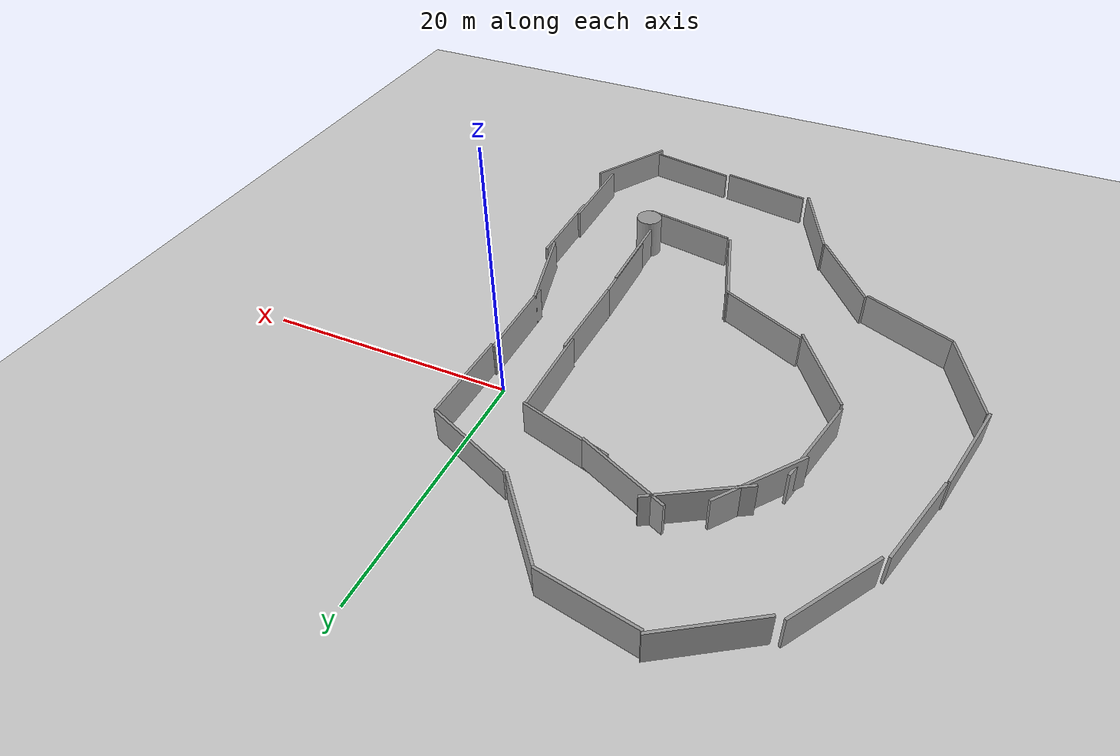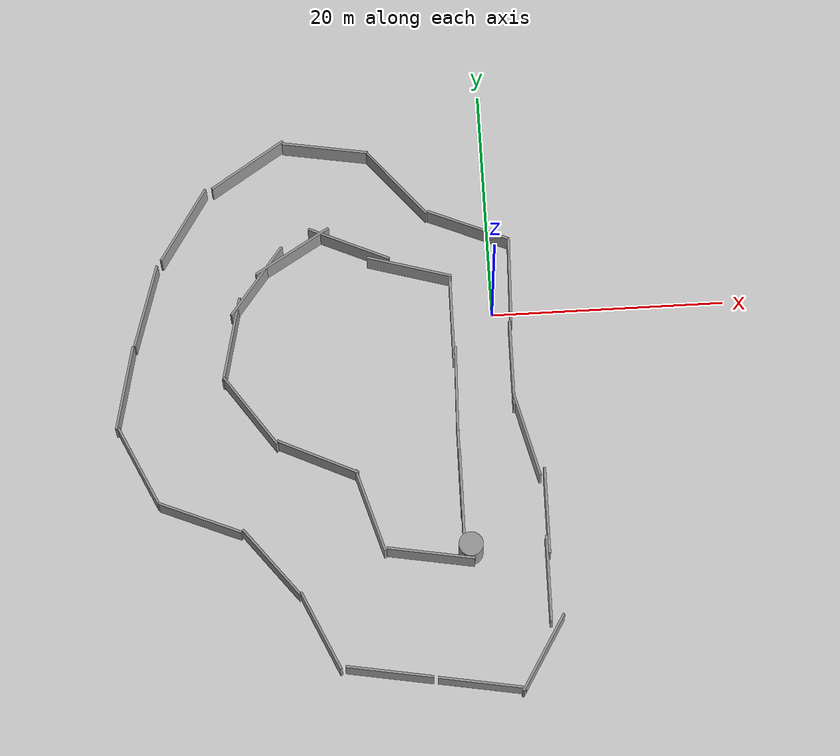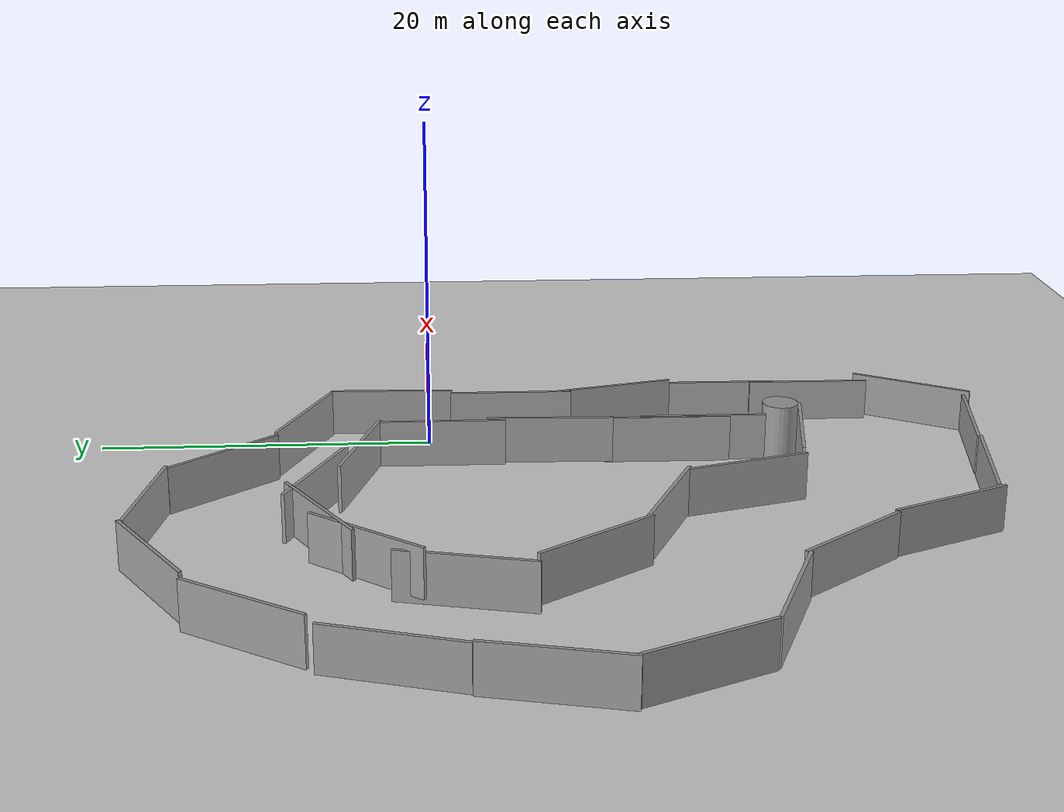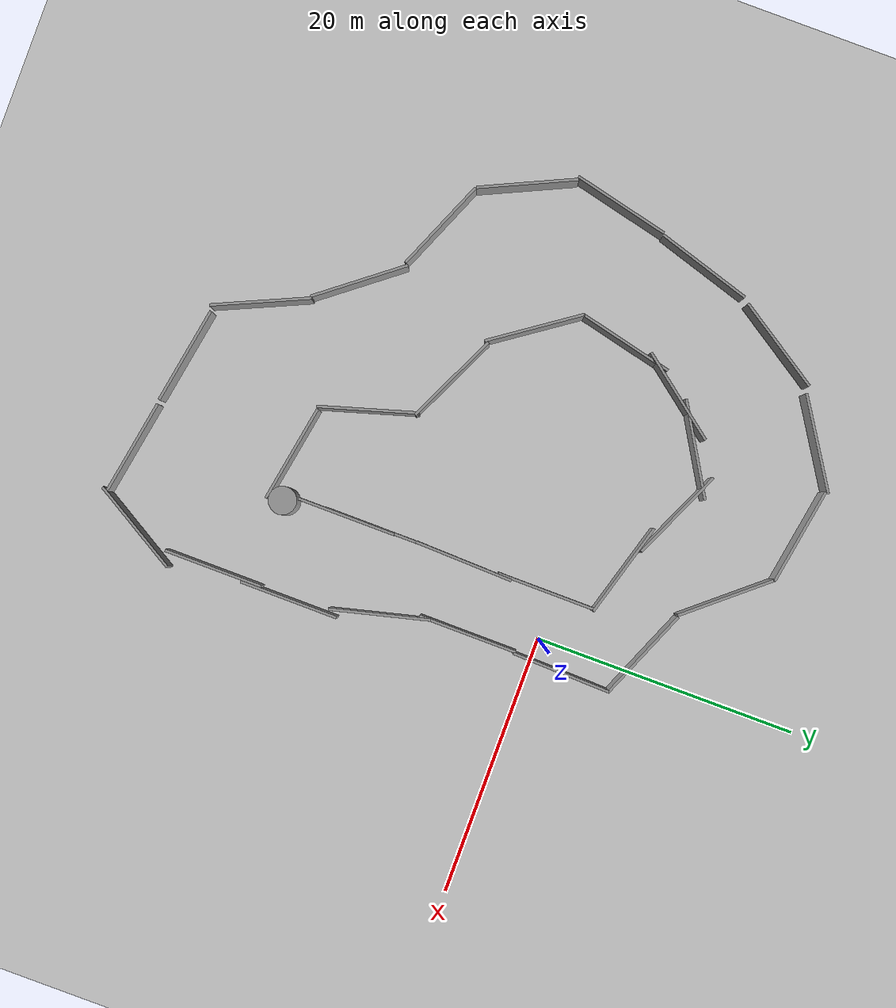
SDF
<sdf version="1.7">
 <world name="default">
  <light name="sun" type="directional">
   <pose>0 0 10 0 -0 0</pose>
   <diffuse>0.8 0.8 0.8 1</diffuse>
   <specular>0.2 0.2 0.2 1</specular>
   <attenuation>
    <range>1000</range>
    <constant>0.9</constant>
    <linear>0.01</linear>
    <quadratic>0.001</quadratic>
   </attenuation>
   <direction>-0.5 0.1 -0.9</direction>
   <spot><inner_angle>0</inner_angle><outer_angle>0</outer_angle><falloff>0</falloff></spot>
  </light>
  <model name="ground_plane">
   <static>1</static>
   <link name="link">
    <collision name="collision">
     <geometry><plane><normal>0 0 1</normal><size>100 100</size></plane></geometry>
     <surface><friction><ode><mu>100</mu><mu2>50</mu2></ode></friction></surface>
    </collision>
    <visual name="visual">
     <cast_shadows>0</cast_shadows>
     <geometry><plane><normal>0 0 1</normal><size>100 100</size></plane></geometry>
     <material>
      <script><uri>file://media/materials/scripts/gazebo.material</uri><name>Gazebo/Grey</name></script>
     </material>
    </visual>
   </link>
  </model>
  <gravity>0 0 -9.8</gravity>
  <magnetic_field>6e-06 2.3e-05 -4.2e-05</magnetic_field>
  <atmosphere type="adiabatic"/>
  <physics type="ode">
   <max_step_size>0.001</max_step_size>
   <real_time_factor>1</real_time_factor>
   <real_time_update_rate>1000</real_time_update_rate>
  </physics>
  <scene><ambient>0.4 0.4 0.4 1</ambient><background>0.7 0.7 0.7 1</background><shadows>1</shadows></scene>
  <audio><device>default</device></audio>
  <spherical_coordinates>
   <surface_model>EARTH_WGS84</surface_model>
   <latitude_deg>0</latitude_deg>
   <longitude_deg>0</longitude_deg>
   <elevation>0</elevation>
   <heading_deg>0</heading_deg>
  </spherical_coordinates>
  <model name="grey_wall">
   <static>1</static>
   <link name="link">
    <pose>0 0 1.4 0 -0 0</pose>
    <collision name="collision"><geometry><box><size>7.5 0.2 2.8</size></box></geometry></collision>
    <visual name="visual">
     <cast_shadows>0</cast_shadows>
     <geometry><box><size>7.5 0.2 2.8</size></box></geometry>
     <material>
      <script>
       <uri>model://grey_wall/materials/scripts</uri>
       <uri>model://grey_wall/materials/textures</uri>
       <name>vrc/grey_wall</name>
      </script>
     </material>
    </visual>
   </link>
   <pose>-3.53729 -7.17364 0.040469 0 0 -1.60351</pose>
  </model>
  <model name="grey_wall_clone">
   <static>1</static>
   <link name="link">
    <pose>0 0 1.4 0 -0 0</pose>
    <collision name="collision"><geometry><box><size>7.5 0.2 2.8</size></box></geometry></collision>
    <visual name="visual">
     <cast_shadows>0</cast_shadows>
     <geometry><box><size>7.5 0.2 2.8</size></box></geometry>
     <material>
      <script>
       <uri>model://grey_wall/materials/scripts</uri>
       <uri>model://grey_wall/materials/textures</uri>
       <name>vrc/grey_wall</name>
      </script>
     </material>
    </visual>
   </link>
   <pose>1.62943 2.30822 0.08482 0 0 -1.60351</pose>
  </model>
  <model name="grey_wall_clone_1">
   <static>1</static>
   <link name="link">
    <pose>0 0 1.4 0 -0 0</pose>
    <collision name="collision"><geometry><box><size>7.5 0.2 2.8</size></box></geometry></collision>
    <visual name="visual">
     <cast_shadows>0</cast_shadows>
     <geometry><box><size>7.5 0.2 2.8</size></box></geometry>
     <material>
      <script>
       <uri>model://grey_wall/materials/scripts</uri>
       <uri>model://grey_wall/materials/textures</uri>
       <name>vrc/grey_wall</name>
      </script>
     </material>
    </visual>
   </link>
   <pose>-12.0718 6.26369 0.45469 0 -0 2.71965</pose>
  </model>
  <model name="grey_wall_clone_2">
   <static>1</static>
   <link name="link">
    <pose>0 0 1.4 0 -0 0</pose>
    <collision name="collision"><geometry><box><size>7.5 0.2 2.8</size></box></geometry></collision>
    <visual name="visual">
     <cast_shadows>0</cast_shadows>
     <geometry><box><size>7.5 0.2 2.8</size></box></geometry>
     <material>
      <script>
       <uri>model://grey_wall/materials/scripts</uri>
       <uri>model://grey_wall/materials/textures</uri>
       <name>vrc/grey_wall</name>
      </script>
     </material>
    </visual>
   </link>
   <pose>-6.96538 4.01974 0 0 0 -0.284074</pose>
  </model>
  <model name="grey_wall_clone_3">
   <static>1</static>
   <link name="link">
    <pose>0 0 1.4 0 -0 0</pose>
    <collision name="collision"><geometry><box><size>7.5 0.2 2.8</size></box></geometry></collision>
    <visual name="visual">
     <cast_shadows>0</cast_shadows>
     <geometry><box><size>7.5 0.2 2.8</size></box></geometry>
     <material>
      <script>
       <uri>model://grey_wall/materials/scripts</uri>
       <uri>model://grey_wall/materials/textures</uri>
       <name>vrc/grey_wall</name>
      </script>
     </material>
    </visual>
   </link>
   <pose>-1.64729 7.4856 0 0 0 -0.400024</pose>
  </model>
  <model name="grey_wall_clone_7">
   <static>1</static>
   <link name="link">
    <pose>0 0 1.4 0 -0 0</pose>
    <collision name="collision"><geometry><box><size>7.5 0.2 2.8</size></box></geometry></collision>
    <visual name="visual">
     <cast_shadows>0</cast_shadows>
     <geometry><box><size>7.5 0.2 2.8</size></box></geometry>
     <material>
      <script>
       <uri>model://grey_wall/materials/scripts</uri>
       <uri>model://grey_wall/materials/textures</uri>
       <name>vrc/grey_wall</name>
      </script>
     </material>
    </visual>
   </link>
   <pose>-7.63102 11.7343 -0.10492 0 0 -0.870497</pose>
  </model>
  <model name="grey_wall_clone_9">
   <static>1</static>
   <link name="link">
    <pose>0 0 1.4 0 -0 0</pose>
    <collision name="collision"><geometry><box><size>7.5 0.2 2.8</size></box></geometry></collision>
    <visual name="visual">
     <cast_shadows>0</cast_shadows>
     <geometry><box><size>7.5 0.2 2.8</size></box></geometry>
     <material>
      <script>
       <uri>model://grey_wall/materials/scripts</uri>
       <uri>model://grey_wall/materials/textures</uri>
       <name>vrc/grey_wall</name>
      </script>
     </material>
    </visual>
   </link>
   <pose>-13.6989 15.2639 0 0 -0 2.97254</pose>
  </model>
  <model name="grey_wall_clone_10">
   <static>1</static>
   <link name="link">
    <pose>0 0 1.4 0 -0 0</pose>
    <collision name="collision"><geometry><box><size>7.5 0.2 2.8</size></box></geometry></collision>
    <visual name="visual">
     <cast_shadows>0</cast_shadows>
     <geometry><box><size>7.5 0.2 2.8</size></box></geometry>
     <material>
      <script>
       <uri>model://grey_wall/materials/scripts</uri>
       <uri>model://grey_wall/materials/textures</uri>
       <name>vrc/grey_wall</name>
      </script>
     </material>
    </visual>
   </link>
   <pose>-20.4981 14.0945 0 0 0 -2.577</pose>
  </model>
  <model name="grey_wall_clone_1_clone">
   <static>1</static>
   <link name="link">
    <pose>0 0 1.4 0 -0 0</pose>
    <collision name="collision"><geometry><box><size>7.5 0.2 2.8</size></box></geometry></collision>
    <visual name="visual">
     <cast_shadows>0</cast_shadows>
     <geometry><box><size>7.5 0.2 2.8</size></box></geometry>
     <material>
      <script>
       <uri>model://grey_wall/materials/scripts</uri>
       <uri>model://grey_wall/materials/textures</uri>
       <name>vrc/grey_wall</name>
      </script>
     </material>
    </visual>
   </link>
   <pose>-22.6013 -1.61298 0.049002 0 0 -1.80288</pose>
  </model>
  <model name="grey_wall_clone_1_clone_0">
   <static>1</static>
   <link name="link">
    <pose>0 0 1.4 0 -0 0</pose>
    <collision name="collision"><geometry><box><size>7.5 0.2 2.8</size></box></geometry></collision>
    <visual name="visual">
     <cast_shadows>0</cast_shadows>
     <geometry><box><size>7.5 0.2 2.8</size></box></geometry>
     <material>
      <script>
       <uri>model://grey_wall/materials/scripts</uri>
       <uri>model://grey_wall/materials/textures</uri>
       <name>vrc/grey_wall</name>
      </script>
     </material>
    </visual>
   </link>
   <pose>-21.267 -8.19531 0.45469 0 0 -0.961376</pose>
  </model>
  <model name="grey_wall_clone_1_clone_1">
   <static>1</static>
   <link name="link">
    <pose>0 0 1.4 0 -0 0</pose>
    <collision name="collision"><geometry><box><size>7.5 0.2 2.8</size></box></geometry></collision>
    <visual name="visual">
     <cast_shadows>0</cast_shadows>
     <geometry><box><size>7.5 0.2 2.8</size></box></geometry>
     <material>
      <script>
       <uri>model://grey_wall/materials/scripts</uri>
       <uri>model://grey_wall/materials/textures</uri>
       <name>vrc/grey_wall</name>
      </script>
     </material>
    </visual>
   </link>
   <pose>-26.2955 8.96824 -0.040241 0 0 -2.15017</pose>
  </model>
  <model name="grey_wall_clone_1_clone_2">
   <static>1</static>
   <link name="link">
    <pose>0 0 1.4 0 -0 0</pose>
    <collision name="collision"><geometry><box><size>7.5 0.2 2.8</size></box></geometry></collision>
    <visual name="visual">
     <cast_shadows>0</cast_shadows>
     <geometry><box><size>7.5 0.2 2.8</size></box></geometry>
     <material>
      <script>
       <uri>model://grey_wall/materials/scripts</uri>
       <uri>model://grey_wall/materials/textures</uri>
       <name>vrc/grey_wall</name>
      </script>
     </material>
    </visual>
   </link>
   <pose>-20.1899 3.34931 0.45469 0 0 -2.23369</pose>
  </model>
  <model name="grey_wall_clone_1_clone_3">
   <static>1</static>
   <link name="link">
    <pose>0 0 1.4 0 -0 0</pose>
    <collision name="collision"><geometry><box><size>7.5 0.2 2.8</size></box></geometry></collision>
    <visual name="visual">
     <cast_shadows>0</cast_shadows>
     <geometry><box><size>7.5 0.2 2.8</size></box></geometry>
     <material>
      <script>
       <uri>model://grey_wall/materials/scripts</uri>
       <uri>model://grey_wall/materials/textures</uri>
       <name>vrc/grey_wall</name>
      </script>
     </material>
    </visual>
   </link>
   <pose>-29.8503 1.89365 -0.280927 0 0 -1.8721</pose>
  </model>
  <model name="grey_wall_clone_1_clone_4">
   <static>1</static>
   <link name="link">
    <pose>0 0 1.4 0 -0 0</pose>
    <collision name="collision"><geometry><box><size>7.5 0.2 2.8</size></box></geometry></collision>
    <visual name="visual">
     <cast_shadows>0</cast_shadows>
     <geometry><box><size>7.5 0.2 2.8</size></box></geometry>
     <material>
      <script>
       <uri>model://grey_wall/materials/scripts</uri>
       <uri>model://grey_wall/materials/textures</uri>
       <name>vrc/grey_wall</name>
      </script>
     </material>
    </visual>
   </link>
   <pose>-31.9391 -5.34761 -0.127978 0 0 -1.80288</pose>
  </model>
  <model name="grey_wall_clone_1_clone_5">
   <static>1</static>
   <link name="link">
    <pose>0 0 1.4 0 -0 0</pose>
    <collision name="collision"><geometry><box><size>7.5 0.2 2.8</size></box></geometry></collision>
    <visual name="visual">
     <cast_shadows>0</cast_shadows>
     <geometry><box><size>7.5 0.2 2.8</size></box></geometry>
     <material>
      <script>
       <uri>model://grey_wall/materials/scripts</uri>
       <uri>model://grey_wall/materials/textures</uri>
       <name>vrc/grey_wall</name>
      </script>
     </material>
    </visual>
   </link>
   <pose>-16.9878 5.86198 0.45469 0 0 -2.6073</pose>
  </model>
  <model name="grey_wall_clone_1_clone_4_clone">
   <static>1</static>
   <link name="link">
    <pose>0 0 1.4 0 -0 0</pose>
    <collision name="collision"><geometry><box><size>7.5 0.2 2.8</size></box></geometry></collision>
    <visual name="visual">
     <cast_shadows>0</cast_shadows>
     <geometry><box><size>7.5 0.2 2.8</size></box></geometry>
     <material>
      <script>
       <uri>model://grey_wall/materials/scripts</uri>
       <uri>model://grey_wall/materials/textures</uri>
       <name>vrc/grey_wall</name>
      </script>
     </material>
    </visual>
   </link>
   <pose>-31.06 -12.3029 -0.16847 0 0 -1.13979</pose>
  </model>
  <model name="grey_wall_clone_1_clone_4_clone_clone">
   <static>1</static>
   <link name="link">
    <pose>0 0 1.4 0 -0 0</pose>
    <collision name="collision"><geometry><box><size>7.5 0.2 2.8</size></box></geometry></collision>
    <visual name="visual">
     <cast_shadows>0</cast_shadows>
     <geometry><box><size>7.5 0.2 2.8</size></box></geometry>
     <material>
      <script>
       <uri>model://grey_wall/materials/scripts</uri>
       <uri>model://grey_wall/materials/textures</uri>
       <name>vrc/grey_wall</name>
      </script>
     </material>
    </visual>
   </link>
   <pose>-25.997 -17.2196 -0.171355 0 0 -0.401009</pose>
  </model>
  <model name="grey_wall_clone_1_clone_4_clone_clone_clone">
   <static>1</static>
   <link name="link">
    <pose>0 0 1.4 0 -0 0</pose>
    <collision name="collision"><geometry><box><size>7.5 0.2 2.8</size></box></geometry></collision>
    <visual name="visual">
     <cast_shadows>0</cast_shadows>
     <geometry><box><size>7.5 0.2 2.8</size></box></geometry>
     <material>
      <script>
       <uri>model://grey_wall/materials/scripts</uri>
       <uri>model://grey_wall/materials/textures</uri>
       <name>vrc/grey_wall</name>
      </script>
     </material>
    </visual>
   </link>
   <pose>-6.58103 -21.6108 0.45469 0 0 -0.176295</pose>
  </model>
  <model name="grey_wall_clone_1_clone_4_clone_clone_clone_0">
   <static>1</static>
   <link name="link">
    <pose>0 0 1.4 0 -0 0</pose>
    <collision name="collision"><geometry><box><size>7.5 0.2 2.8</size></box></geometry></collision>
    <visual name="visual">
     <cast_shadows>0</cast_shadows>
     <geometry><box><size>7.5 0.2 2.8</size></box></geometry>
     <material>
      <script>
       <uri>model://grey_wall/materials/scripts</uri>
       <uri>model://grey_wall/materials/textures</uri>
       <name>vrc/grey_wall</name>
      </script>
     </material>
    </visual>
   </link>
   <pose>-10.6355 -31.4886 -0.285363 0 0 -0.176295</pose>
  </model>
  <model name="grey_wall_clone_1_clone_4_clone_clone_clone_1">
   <static>1</static>
   <link name="link">
    <pose>0 0 1.4 0 -0 0</pose>
    <collision name="collision"><geometry><box><size>7.5 0.2 2.8</size></box></geometry></collision>
    <visual name="visual">
     <cast_shadows>0</cast_shadows>
     <geometry><box><size>7.5 0.2 2.8</size></box></geometry>
     <material>
      <script>
       <uri>model://grey_wall/materials/scripts</uri>
       <uri>model://grey_wall/materials/textures</uri>
       <name>vrc/grey_wall</name>
      </script>
     </material>
    </visual>
   </link>
   <pose>-2.9192 -32.8371 -0.495473 0 0 -0.176295</pose>
  </model>
  <model name="grey_wall_clone_1_clone_4_clone_clone_clone_2">
   <static>1</static>
   <link name="link">
    <pose>0 0 1.4 0 -0 0</pose>
    <collision name="collision"><geometry><box><size>7.5 0.2 2.8</size></box></geometry></collision>
    <visual name="visual">
     <cast_shadows>0</cast_shadows>
     <geometry><box><size>7.5 0.2 2.8</size></box></geometry>
     <material>
      <script>
       <uri>model://grey_wall/materials/scripts</uri>
       <uri>model://grey_wall/materials/textures</uri>
       <name>vrc/grey_wall</name>
      </script>
     </material>
    </visual>
   </link>
   <pose>2.41117 -30.601 -0.235337 0 0 -2.11037</pose>
  </model>
  <model name="grey_wall_clone_1_clone_4_clone_clone_clone_2_clone">
   <static>1</static>
   <link name="link">
    <pose>0 0 1.4 0 -0 0</pose>
    <collision name="collision"><geometry><box><size>7.5 0.2 2.8</size></box></geometry></collision>
    <visual name="visual">
     <cast_shadows>0</cast_shadows>
     <geometry><box><size>7.5 0.2 2.8</size></box></geometry>
     <material>
      <script>
       <uri>model://grey_wall/materials/scripts</uri>
       <uri>model://grey_wall/materials/textures</uri>
       <name>vrc/grey_wall</name>
      </script>
     </material>
    </visual>
   </link>
   <pose>1.35246 -5.06582 -0.044998 0 0 -1.57819</pose>
  </model>
  <model name="grey_wall_clone_1_clone_4_clone_clone_clone_2_clone_0">
   <static>1</static>
   <link name="link">
    <pose>0 0 1.4 0 -0 0</pose>
    <collision name="collision"><geometry><box><size>7.5 0.2 2.8</size></box></geometry></collision>
    <visual name="visual">
     <cast_shadows>0</cast_shadows>
     <geometry><box><size>7.5 0.2 2.8</size></box></geometry>
     <material>
      <script>
       <uri>model://grey_wall/materials/scripts</uri>
       <uri>model://grey_wall/materials/textures</uri>
       <name>vrc/grey_wall</name>
      </script>
     </material>
    </visual>
   </link>
   <pose>2.22819 -11.592 -0.026682 0 0 -1.32609</pose>
  </model>
  <model name="grey_wall_clone_1_clone_4_clone_clone_clone_2_clone_1">
   <static>1</static>
   <link name="link">
    <pose>0 0 1.4 0 -0 0</pose>
    <collision name="collision"><geometry><box><size>7.5 0.2 2.8</size></box></geometry></collision>
    <visual name="visual">
     <cast_shadows>0</cast_shadows>
     <geometry><box><size>7.5 0.2 2.8</size></box></geometry>
     <material>
      <script>
       <uri>model://grey_wall/materials/scripts</uri>
       <uri>model://grey_wall/materials/textures</uri>
       <name>vrc/grey_wall</name>
      </script>
     </material>
    </visual>
   </link>
   <pose>3.51842 -18.2396 -0.369249 0 0 -1.57819</pose>
  </model>
  <model name="grey_wall_clone_1_clone_4_clone_clone_clone_2_clone_2">
   <static>1</static>
   <link name="link">
    <pose>0 0 1.4 0 -0 0</pose>
    <collision name="collision"><geometry><box><size>7.5 0.2 2.8</size></box></geometry></collision>
    <visual name="visual">
     <cast_shadows>0</cast_shadows>
     <geometry><box><size>7.5 0.2 2.8</size></box></geometry>
     <material>
      <script>
       <uri>model://grey_wall/materials/scripts</uri>
       <uri>model://grey_wall/materials/textures</uri>
       <name>vrc/grey_wall</name>
      </script>
     </material>
    </visual>
   </link>
   <pose>3.27283 -24.1984 -0.342898 0 0 -1.57819</pose>
  </model>
  <model name="grey_wall_clone_1_clone_4_clone_clone_clone_2_clone_3">
   <static>1</static>
   <link name="link">
    <pose>0 0 1.4 0 -0 0</pose>
    <collision name="collision"><geometry><box><size>7.5 0.2 2.8</size></box></geometry></collision>
    <visual name="visual">
     <cast_shadows>0</cast_shadows>
     <geometry><box><size>7.5 0.2 2.8</size></box></geometry>
     <material>
      <script>
       <uri>model://grey_wall/materials/scripts</uri>
       <uri>model://grey_wall/materials/textures</uri>
       <name>vrc/grey_wall</name>
      </script>
     </material>
    </visual>
   </link>
   <pose>-3.55113 -0.744706 -0.044713 0 0 -1.57819</pose>
  </model>
  <model name="grey_wall_clone_1_clone_4_clone_clone_clone_2_clone_4">
   <static>1</static>
   <link name="link">
    <pose>0 0 1.4 0 -0 0</pose>
    <collision name="collision"><geometry><box><size>7.5 0.2 2.8</size></box></geometry></collision>
    <visual name="visual">
     <cast_shadows>0</cast_shadows>
     <geometry><box><size>7.5 0.2 2.8</size></box></geometry>
     <material>
      <script>
       <uri>model://grey_wall/materials/scripts</uri>
       <uri>model://grey_wall/materials/textures</uri>
       <name>vrc/grey_wall</name>
      </script>
     </material>
    </visual>
   </link>
   <pose>-3.67032 -14.2084 -0.005647 0 0 -1.57819</pose>
  </model>
  <model name="grey_wall_clone_1_clone_4_clone_clone_clone_2_clone_5">
   <static>1</static>
   <link name="link">
    <pose>0 0 1.4 0 -0 0</pose>
    <collision name="collision"><geometry><box><size>7.5 0.2 2.8</size></box></geometry></collision>
    <visual name="visual">
     <cast_shadows>0</cast_shadows>
     <geometry><box><size>7.5 0.2 2.8</size></box></geometry>
     <material>
      <script>
       <uri>model://grey_wall/materials/scripts</uri>
       <uri>model://grey_wall/materials/textures</uri>
       <name>vrc/grey_wall</name>
      </script>
     </material>
    </visual>
   </link>
   <pose>-3.64313 -16.3381 0.046751 0 0 -1.57819</pose>
  </model>
  <model name="grey_wall_clone_1_clone_4_clone_clone_clone_2_clone_6_clone">
   <static>1</static>
   <link name="link">
    <pose>0 0 1.4 0 -0 0</pose>
    <collision name="collision"><geometry><box><size>7.5 0.2 2.8</size></box></geometry></collision>
    <visual name="visual">
     <cast_shadows>0</cast_shadows>
     <geometry><box><size>7.5 0.2 2.8</size></box></geometry>
     <material>
      <script>
       <uri>model://grey_wall/materials/scripts</uri>
       <uri>model://grey_wall/materials/textures</uri>
       <name>vrc/grey_wall</name>
      </script>
     </material>
    </visual>
   </link>
   <pose>-16.2302 -27.6434 -0.171883 0 -0 1.99042</pose>
  </model>
  <model name="grey_wall_clone_1_clone_4_clone_clone_clone_2_clone_6_clone_0">
   <static>1</static>
   <link name="link">
    <pose>0 0 1.4 0 -0 0</pose>
    <collision name="collision"><geometry><box><size>7.5 0.2 2.8</size></box></geometry></collision>
    <visual name="visual">
     <cast_shadows>0</cast_shadows>
     <geometry><box><size>7.5 0.2 2.8</size></box></geometry>
     <material>
      <script>
       <uri>model://grey_wall/materials/scripts</uri>
       <uri>model://grey_wall/materials/textures</uri>
       <name>vrc/grey_wall</name>
      </script>
     </material>
    </visual>
   </link>
   <pose>-11.5009 -17.5247 0.232819 0 -0 1.8581</pose>
  </model>
  <model name="grey_wall_clone_1_clone_4_clone_clone_clone_2_clone_6_clone_1">
   <static>1</static>
   <link name="link">
    <pose>0 0 1.4 0 -0 0</pose>
    <collision name="collision"><geometry><box><size>7.5 0.2 2.8</size></box></geometry></collision>
    <visual name="visual">
     <cast_shadows>0</cast_shadows>
     <geometry><box><size>7.5 0.2 2.8</size></box></geometry>
     <material>
      <script>
       <uri>model://grey_wall/materials/scripts</uri>
       <uri>model://grey_wall/materials/textures</uri>
       <name>vrc/grey_wall</name>
      </script>
     </material>
    </visual>
   </link>
   <pose>-20.1278 -21.4202 -0.226426 0 -0 2.23091</pose>
  </model>
  <model name="grey_wall_clone_1_clone_4_clone_clone_clone_2_clone_6_clone_2">
   <static>1</static>
   <link name="link">
    <pose>0 0 1.4 0 -0 0</pose>
    <collision name="collision"><geometry><box><size>7.5 0.2 2.8</size></box></geometry></collision>
    <visual name="visual">
     <cast_shadows>0</cast_shadows>
     <geometry><box><size>7.5 0.2 2.8</size></box></geometry>
     <material>
      <script>
       <uri>model://grey_wall/materials/scripts</uri>
       <uri>model://grey_wall/materials/textures</uri>
       <name>vrc/grey_wall</name>
      </script>
     </material>
    </visual>
   </link>
   <pose>-15.7303 -12.5639 0.313117 0 -0 2.70097</pose>
  </model>
  <model name="unit_cylinder_clone">
   <pose>-3.14577 -21.0518 1.69397 0 -0 -0.216458</pose>
   <link name="link">
    <inertial>
     <mass>1</mass>
     <inertia><ixx>0.145833</ixx><ixy>0</ixy><ixz>0</ixz><iyy>0.145833</iyy><iyz>0</iyz><izz>0.125</izz></inertia>
    </inertial>
    <collision name="collision">
     <geometry><cylinder><radius>1.05268</radius><length>3.38795</length></cylinder></geometry>
    </collision>
    <visual name="visual">
     <geometry><cylinder><radius>1.05268</radius><length>3.38795</length></cylinder></geometry>
     <material>
      <script><name>Gazebo/Grey</name><uri>file://media/materials/scripts/gazebo.material</uri></script>
     </material>
    </visual>
   </link>
  </model>
 </world>
</sdf>
